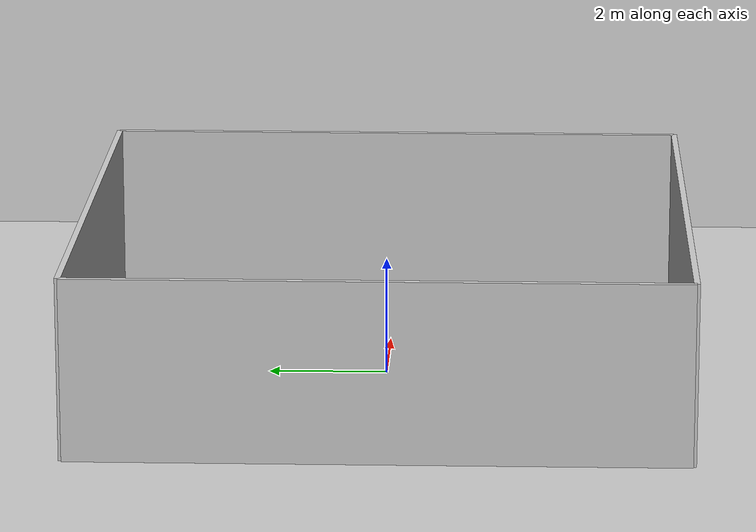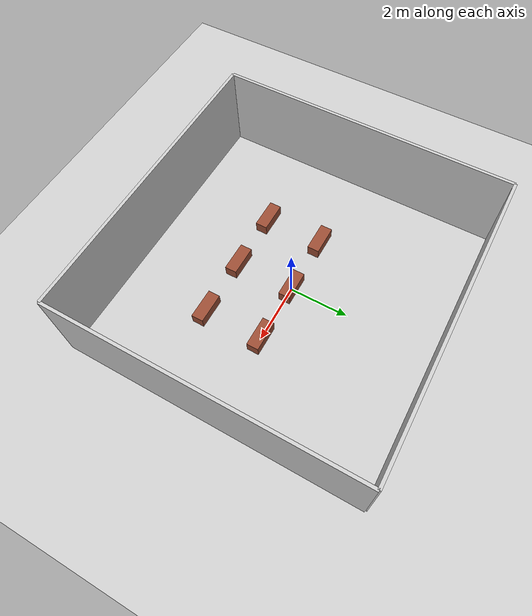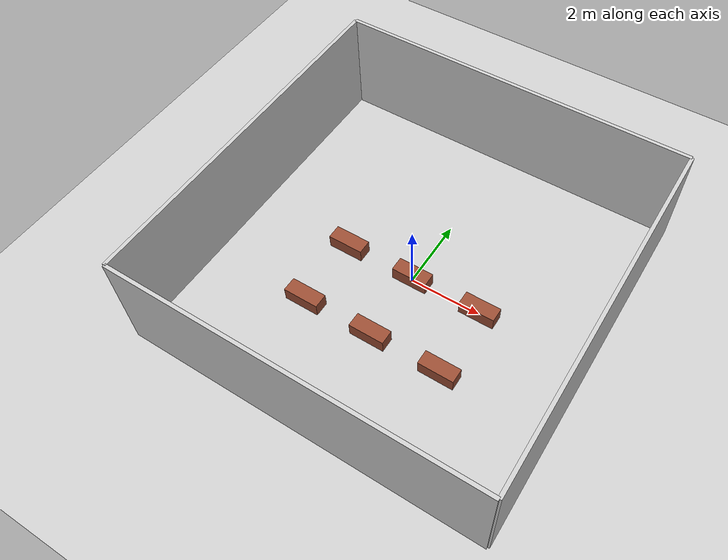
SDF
<sdf version='1.10'>
  <world name='empty'>
    <physics name='1ms' type='ignored'>
      <max_step_size>0.001</max_step_size>
      <real_time_factor>1</real_time_factor>
      <real_time_update_rate>1000</real_time_update_rate>
    </physics>
    <plugin name='gz::sim::systems::Physics' filename='gz-sim-physics-system'/>
    <plugin name='gz::sim::systems::UserCommands' filename='gz-sim-user-commands-system'/>
    <plugin name='gz::sim::systems::SceneBroadcaster' filename='gz-sim-scene-broadcaster-system'/>
    <plugin name='gz::sim::systems::Sensors' filename='gz-sim-sensors-system'>
      <render_engine>ogre2</render_engine>
    </plugin>
    <plugin name='gz::sim::systems::Contact' filename='gz-sim-contact-system'/>
    <gravity>0 0 -9.8000000000000007</gravity>
    <magnetic_field>5.5644999999999998e-06 2.2875799999999999e-05 -4.2388400000000002e-05</magnetic_field>
    <atmosphere type='adiabatic'/>
    <scene>
      <ambient>0.400000006 0.400000006 0.400000006 1</ambient>
      <background>0.699999988 0.699999988 0.699999988 1</background>
      <shadows>true</shadows>
    </scene>
    <model name='ground_plane'>
      <static>true</static>
      <link name='link'>
        <collision name='collision'>
          <geometry>
            <plane>
              <normal>0 0 1</normal>
              <size>100 100</size>
            </plane>
          </geometry>
          <surface>
            <friction>
              <ode/>
            </friction>
            <bounce/>
            <contact/>
          </surface>
        </collision>
        <visual name='visual'>
          <geometry>
            <plane>
              <normal>0 0 1</normal>
              <size>100 100</size>
            </plane>
          </geometry>
          <material>
            <ambient>0.800000012 0.800000012 0.800000012 1</ambient>
            <diffuse>0.800000012 0.800000012 0.800000012 1</diffuse>
            <specular>0.800000012 0.800000012 0.800000012 1</specular>
          </material>
        </visual>
        <pose>0 0 0 0 0 0</pose>
        <inertial>
          <pose>0 0 0 0 0 0</pose>
          <mass>1</mass>
          <inertia>
            <ixx>1</ixx>
            <ixy>0</ixy>
            <ixz>0</ixz>
            <iyy>1</iyy>
            <iyz>0</iyz>
            <izz>1</izz>
          </inertia>
        </inertial>
        <enable_wind>false</enable_wind>
      </link>
      <pose>0 0 0 0 0 0</pose>
      <self_collide>false</self_collide>
    </model>
        <!-- Walls -->
    <model name="wall_back">
      <static>true</static>
      <link name="link">
        <collision name="collision">
          <geometry>
            <box>
              <size>10 0.1 3</size>
            </box>
          </geometry>
        </collision>
        <visual name="visual">
          <geometry>
            <box>
              <size>10 0.1 3</size>
            </box>
          </geometry>
          <material>
            <ambient>0.8 0.8 0.8 1</ambient>
            <diffuse>0.8 0.8 0.8 1</diffuse>
          </material>
        </visual>
        <pose>0 -5 1.5 0 0 0</pose>
      </link>
    </model>

    <model name="wall_left">
      <static>true</static>
      <link name="link">
        <collision name="collision">
          <geometry>
            <box>
              <size>0.1 10 3</size>
            </box>
          </geometry>
        </collision>
        <visual name="visual">
          <geometry>
            <box>
              <size>0.1 10 3</size>
            </box>
          </geometry>
          <material>
            <ambient>0.8 0.8 0.8 1</ambient>
            <diffuse>0.8 0.8 0.8 1</diffuse>
          </material>
        </visual>
        <pose>-5 0 1.5 0 0 0</pose>
      </link>
    </model>

    <model name="wall_right">
      <static>true</static>
      <link name="link">
        <collision name="collision">
          <geometry>
            <box>
              <size>0.1 10 3</size>
            </box>
          </geometry>
        </collision>
        <visual name="visual">
          <geometry>
            <box>
              <size>0.1 10 3</size>
            </box>
          </geometry>
          <material>
            <ambient>0.8 0.8 0.8 1</ambient>
            <diffuse>0.8 0.8 0.8 1</diffuse>
          </material>
        </visual>
        <pose>5 0 1.5 0 0 0</pose>
      </link>
    </model>

    <model name="wall_front">
      <static>true</static>
      <link name="link">
        <collision name="collision">
          <geometry>
            <box>
              <size>10 0.1 3</size>
            </box>
          </geometry>
        </collision>
        <visual name="visual">
          <geometry>
            <box>
              <size>10 0.1 3</size>
            </box>
          </geometry>
          <material>
            <ambient>0.8 0.8 0.8 1</ambient>
            <diffuse>0.8 0.8 0.8 1</diffuse>
          </material>
        </visual>
        <pose>0 5 1.5 0 0 0</pose>
      </link>
    </model>
   <!-- Benches -->
    <model name="bench_1">
      <static>true</static>
      <link name="link">
        <collision name="collision">
          <geometry>
            <box>
              <size>1.0 0.4 0.4</size>
            </box>
          </geometry>
        </collision>
        <visual name="visual">
          <geometry>
            <box>
              <size>1.0 0.4 0.4</size>
            </box>
          </geometry>
          <material>
            <ambient>0.6 0.3 0.2 1</ambient>
            <diffuse>0.6 0.3 0.2 1</diffuse>
          </material>
        </visual>
      </link>
      <pose>-2 0 0.2 0 0 0</pose>
    </model>

    <model name="bench_2">
      <static>true</static>
      <link name="link">
        <collision name="collision">
          <geometry>
            <box>
              <size>1.0 0.4 0.4</size>
            </box>
          </geometry>
        </collision>
        <visual name="visual">
          <geometry>
            <box>
              <size>1.0 0.4 0.4</size>
            </box>
          </geometry>
          <material>
            <ambient>0.6 0.3 0.2 1</ambient>
            <diffuse>0.6 0.3 0.2 1</diffuse>
          </material>
        </visual>
      </link>
      <pose>0 0 0.2 0 0 0</pose>
    </model>

    <model name="bench_3">
      <static>true</static>
      <link name="link">
        <collision name="collision">
          <geometry>
            <box>
              <size>1.0 0.4 0.4</size>
            </box>
          </geometry>
        </collision>
        <visual name="visual">
          <geometry>
            <box>
              <size>1.0 0.4 0.4</size>
            </box>
          </geometry>
          <material>
            <ambient>0.6 0.3 0.2 1</ambient>
            <diffuse>0.6 0.3 0.2 1</diffuse>
          </material>
        </visual>
      </link>
      <pose>2 0 0.2 0 0 0</pose>
    </model>
       <!-- Benches -->
    <model name="bench_4">
      <static>true</static>
      <link name="link">
        <collision name="collision">
          <geometry>
            <box>
              <size>1.0 0.4 0.4</size>
            </box>
          </geometry>
        </collision>
        <visual name="visual">
          <geometry>
            <box>
              <size>1.0 0.4 0.4</size>
            </box>
          </geometry>
          <material>
            <ambient>0.6 0.3 0.2 1</ambient>
            <diffuse>0.6 0.3 0.2 1</diffuse>
          </material>
        </visual>
      </link>
      <pose>-2 -2 0.2 0 0 0</pose>
    </model>

    <model name="bench_5">
      <static>true</static>
      <link name="link">
        <collision name="collision">
          <geometry>
            <box>
              <size>1.0 0.4 0.4</size>
            </box>
          </geometry>
        </collision>
        <visual name="visual">
          <geometry>
            <box>
              <size>1.0 0.4 0.4</size>
            </box>
          </geometry>
          <material>
            <ambient>0.6 0.3 0.2 1</ambient>
            <diffuse>0.6 0.3 0.2 1</diffuse>
          </material>
        </visual>
      </link>
      <pose>0 -2 0.2 0 0 0</pose>
    </model>

    <model name="bench_6">
      <static>true</static>
      <link name="link">
        <collision name="collision">
          <geometry>
            <box>
              <size>1.0 0.4 0.4</size>
            </box>
          </geometry>
        </collision>
        <visual name="visual">
          <geometry>
            <box>
              <size>1.0 0.4 0.4</size>
            </box>
          </geometry>
          <material>
            <ambient>0.6 0.3 0.2 1</ambient>
            <diffuse>0.6 0.3 0.2 1</diffuse>
          </material>
        </visual>
      </link>
      <pose>2 -2 0.2 0 0 0</pose>
    </model>
    <light name='sun' type='directional'>
      <pose>0 0 10 0 0 0</pose>
      <cast_shadows>false</cast_shadows>
      <intensity>1</intensity>
      <direction>-0.5 0.10000000000000001 -0.90000000000000002</direction>
      <diffuse>0.800000012 0.800000012 0.800000012 1</diffuse>
      <specular>0.200000003 0.200000003 0.200000003 1</specular>
      <attenuation>
        <range>1000</range>
        <linear>0.01</linear>
        <constant>0.90000000000000002</constant>
        <quadratic>0.001</quadratic>
      </attenuation>
      <spot>
        <inner_angle>0</inner_angle>
        <outer_angle>0</outer_angle>
        <falloff>0</falloff>
      </spot>
    </light>
  </world>
</sdf>
